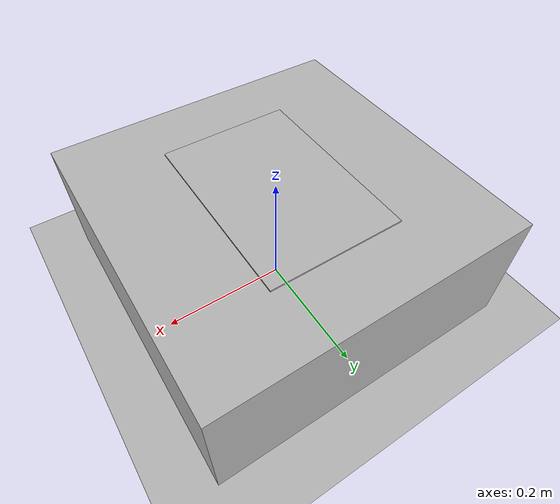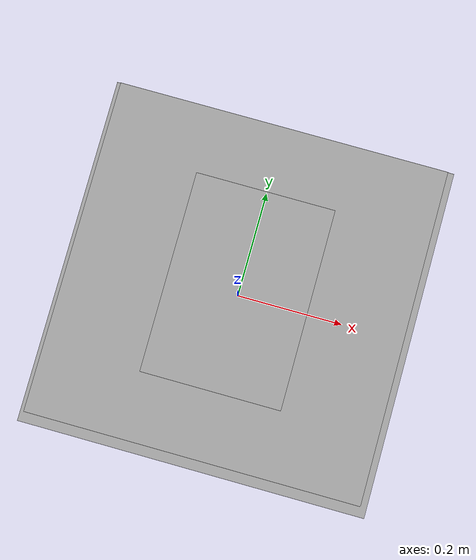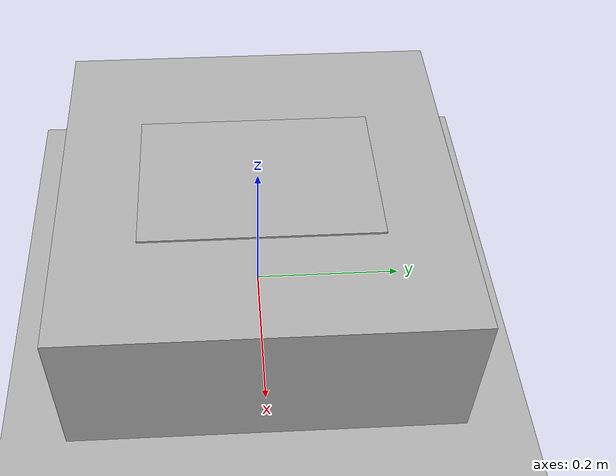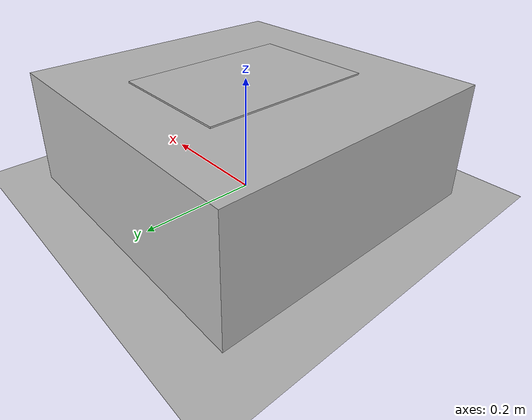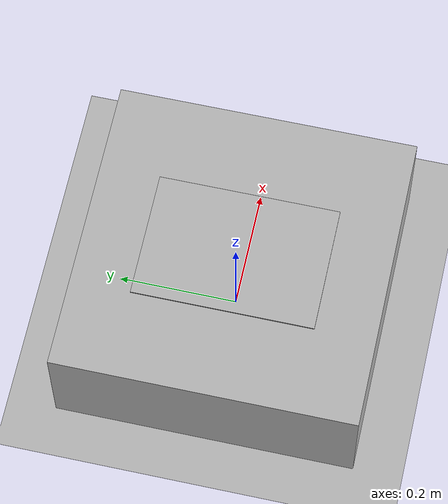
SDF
<?xml version="1.0" ?>
<sdf version="1.5">
  <world name="default">
    <scene>
      <shadows>0</shadows>
    </scene>
    <!-- A global light source -->
    <include>
      <uri>model://sun</uri>
    </include>

    <!-- ground plane {-->
    <model name="ground_plane">
      <static>true</static>
      <link name="link">
        <collision name="collision">
          <pose>0 0 0 0 0 0</pose>
          <geometry>
            <plane>
              <normal>0 0 1</normal>
              <size>250 250</size>
            </plane>
          </geometry>
          <surface>
            <friction>
              <ode>
                <mu>1</mu>
                <mu2>1</mu2>
              </ode>
            </friction>
          </surface>
        </collision>
        <visual name="grass">
          <pose>0 0 0 0 0 0</pose>
          <cast_shadows>false</cast_shadows>
          <geometry>
            <mesh>
              <uri>file://grass_plane/meshes/grass_plane.dae</uri>
            </mesh>
          </geometry>
        </visual>
      </link>
    </model>

    <!-- Landing Pad -->
    <include>
      <uri>model://landing_box</uri>
      <pose>0 0 0.1 0 0 0</pose>
    </include>

    <physics name='default_physics' default='0' type='ode'>
      <gravity>0 0 -9.8066</gravity>
      <ode>
        <solver>
          <type>quick</type>
          <iters>10</iters>
          <sor>1.3</sor>
          <use_dynamic_moi_rescaling>0</use_dynamic_moi_rescaling>
        </solver>
        <constraints>
          <cfm>0</cfm>
          <erp>0.2</erp>
          <contact_max_correcting_vel>100</contact_max_correcting_vel>
          <contact_surface_layer>0.001</contact_surface_layer>
        </constraints>
      </ode>
      <max_step_size>0.004</max_step_size>
      <real_time_factor>1</real_time_factor>
      <real_time_update_rate>250</real_time_update_rate>
      <magnetic_field>6.0e-6 2.3e-5 -4.2e-5</magnetic_field>
    </physics>
  </world>
</sdf>

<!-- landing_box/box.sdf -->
<sdf version="1.0">
  <model name="landing_box">
    <static>true</static>
    <link name="box_link">
      <inertial>
        <mass>1.0</mass>
        <inertia> <!-- inertias are tricky to compute -->
          <!-- http://gazebosim.org/tutorials?tut=inertia&cat=build_robot -->
          <ixx>0.02407</ixx>       <!-- for a box: ixx = 0.083 * mass * (y*y + z*z) -->
          <ixy>0.0</ixy>         <!-- for a box: ixy = 0 -->
          <ixz>0.0</ixz>         <!-- for a box: ixz = 0 -->
          <iyy>0.02407</iyy>       <!-- for a box: iyy = 0.083 * mass * (x*x + z*z) -->
          <iyz>0.0</iyz>         <!-- for a box: iyz = 0 -->
          <izz>0.0415</izz>       <!-- for a box: izz = 0.083 * mass * (x*x + y*y) -->
        </inertia>
      </inertial>
      <collision name="collision">
        <geometry>
          <box>
            <size>0.5 0.5 0.2</size>
          </box>
        </geometry>
        <surface>
          <friction>
            <ode>
              <mu>1</mu>
              <mu2>1</mu2>
            </ode>
          </friction>
      </surface>
      </collision>
      <visual name="visual">
        <geometry>
          <box>
            <size>0.5 0.5 0.2</size>
          </box>
        </geometry>
      </visual>
    </link>

    <include>
      <uri>model://landing_pad</uri>
      <pose>0 0 0.1 0 0 0</pose>
      <name>landing_pad</name>
    </include>
    <joint name='pad_link' type='fixed'>
      <child>landing_pad::link</child>
      <parent>box_link</parent>
    </joint>

  </model>
</sdf>

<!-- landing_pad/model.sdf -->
<sdf version="1.6">
  <model name="landing_pad">
    <static>true</static>
    <link name="link">
      <visual name="visual">
        <geometry>
          <mesh>
            <uri>model://landing_pad/meshes/landing_pad.dae</uri>
          <scale>1.0 1.0 1.0</scale></mesh>
        </geometry>
      </visual>
    </link>

  </model>
</sdf>
